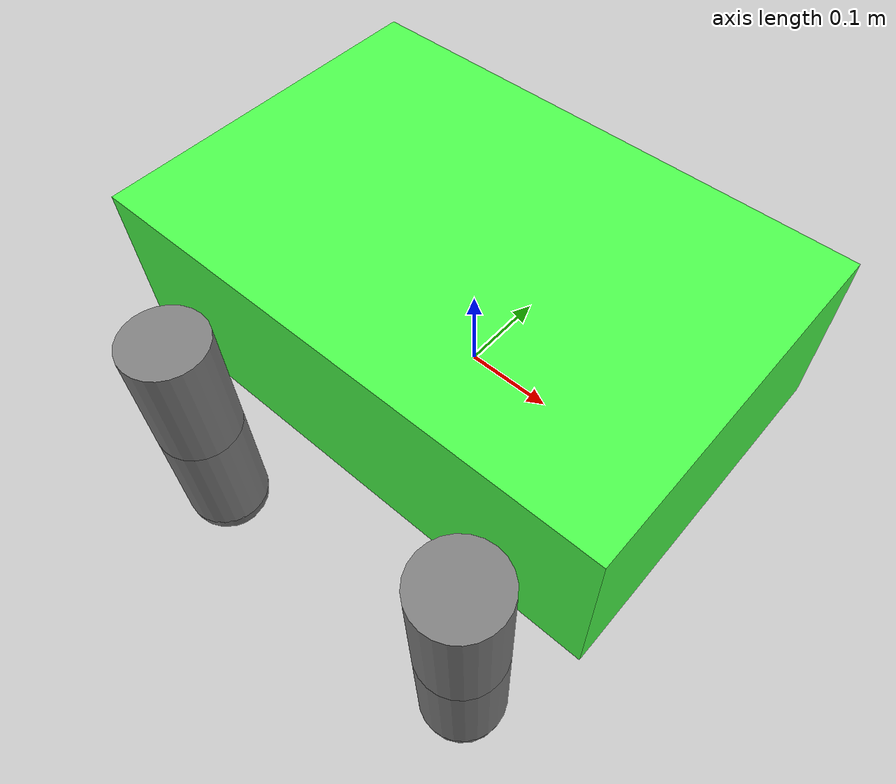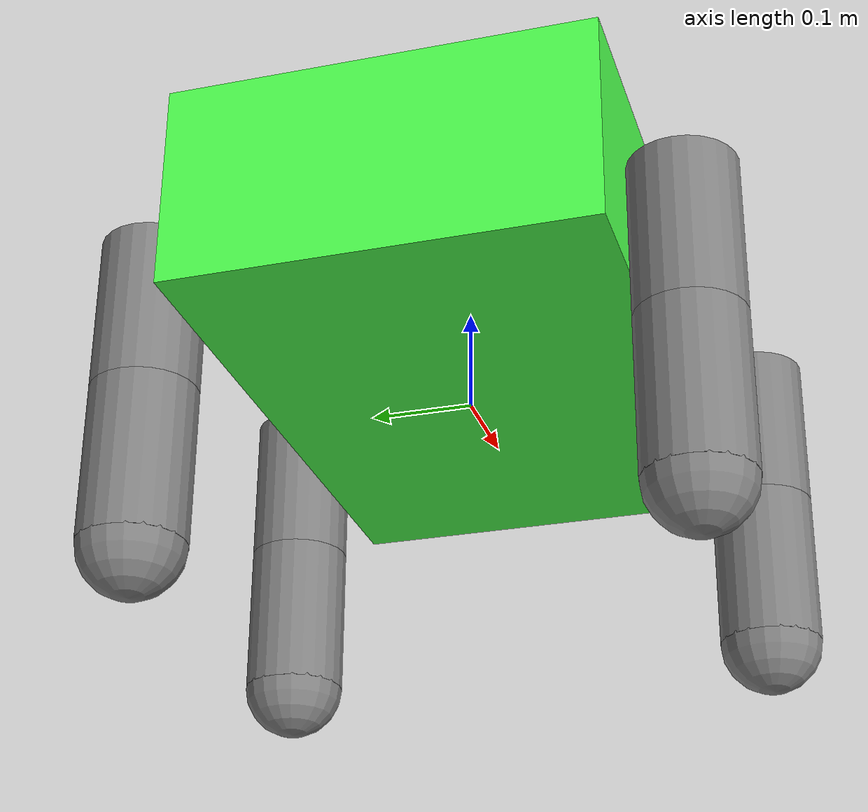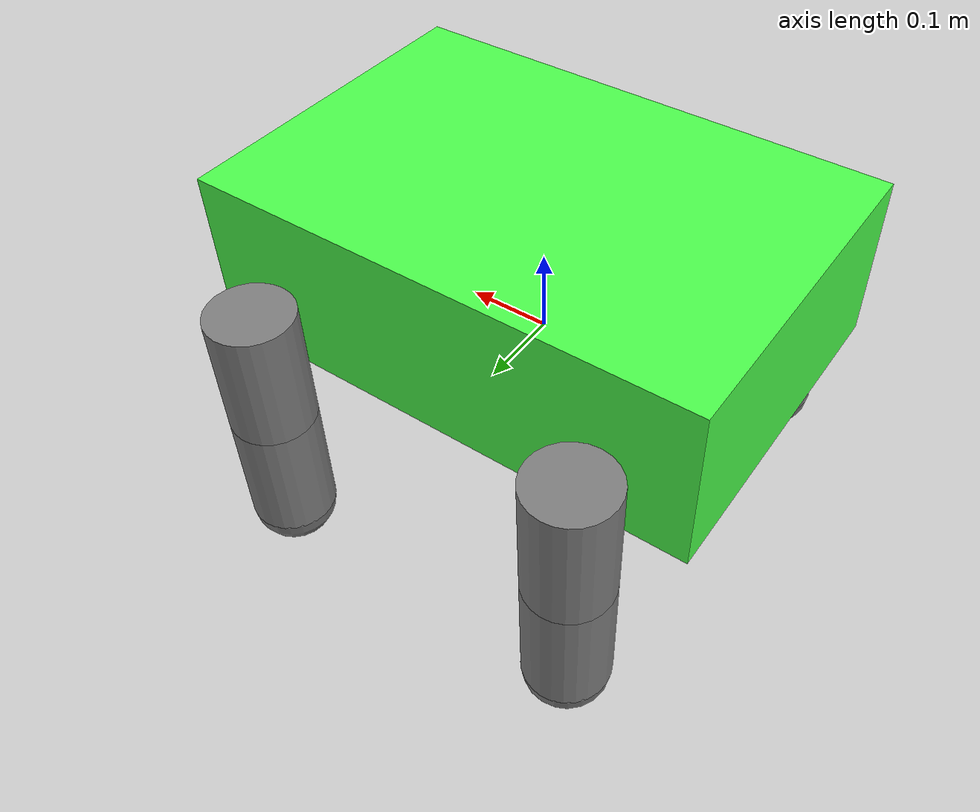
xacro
<?xml version="1.0"?>
<robot name="my_robot" xmlns:xacro="http://www.ros.org/wiki/xacro">

    <xacro:include filename="commom_properties.xacro" /> <!-- A inclusão do properties antes permite que seja usado em todos os arquivos abaixo -->

    <xacro:property name="body_length" value = "0.6"/>
    <xacro:property name="body_width" value ="0.4"/>
    <xacro:property name="body_height" value="0.2"/>
    <xacro:property name="leg_radius" value ="0.05"/>
    <xacro:property name="upper_leg_length" value ="0.15"/>
    <xacro:property name="lower_leg_length" value ="0.15"/>
    <xacro:property name="feet_radius" value ="0.05"/>

    <link name="body_link">
        <visual>
            <geometry>
                <box size="${body_length} ${body_width} ${body_height}"/>
            </geometry>
            <origin xyz="0 0 ${body_height/2.0}" rpy="0 0 0"/>
            <material name="green"/>
        </visual>
        <collision>
            <geometry>
                <box size="${body_length} ${body_width} ${body_height}"/>
            </geometry>
            <origin xyz="0 0 ${body_height/2.0}" rpy="0 0 0"/>
        </collision>
        <xacro:box_inertia m="5.0" l="${body_length}" w="${body_width}" h="${body_height}"
                            xyz="0 0 ${body_height/2.0}" rpy="0 0 0" />
    </link>

   <xacro:macro name="upper_leg_link" params = "prefix">
        <link name="${prefix}_upper_leg_link">
            <visual>
                <geometry>
                    <cylinder radius="${leg_radius}" length="${upper_leg_length}"/>
                </geometry>
                <origin xyz="0 0 ${-upper_leg_length/2.0}" rpy="0 0 0"/>
                <material name="grey"/>
            </visual>
            <collision>
                <geometry>
                    <cylinder radius="${leg_radius}" length="${upper_leg_length}"/>
                </geometry>
                <origin xyz="0 0 ${-upper_leg_length/2.0}" rpy="0 0 0"/>
            </collision>
            <xacro:cylinder_inertia m="1.0" r="${leg_radius}" h="${upper_leg_length}"
                                     xyz="0 0 0" rpy="${pi/2.0} 0 0"/>
        </link>
    </xacro:macro>

    <xacro:upper_leg_link prefix="RR"/>
    <xacro:upper_leg_link prefix="RL"/>
    <xacro:upper_leg_link prefix="FR"/>
    <xacro:upper_leg_link prefix="FL"/>

    <joint name="RR_upper_leg_joint" type="continuous">
        <parent link="body_link"/>
        <child link="RR_upper_leg_link"/>
        <origin xyz = "${-body_width/2.0} ${-(body_width/2.0+leg_radius)} ${body_height/2.0}" rpy = "0 0 0"/>
        <axis xyz = "0 1 0"/>
    </joint>

    <joint name="RL_upper_leg_joint" type="continuous">
        <parent link="body_link"/>
        <child link="RL_upper_leg_link"/>
        <origin xyz = "${-body_width/2.0} ${(body_width/2.0+leg_radius)} ${body_height/2.0}" rpy = "0 0 0"/>
        <axis xyz = "0 1 0"/>
    </joint>

    <joint name="FR_upper_leg_joint" type="continuous">
        <parent link="body_link"/>
        <child link="FR_upper_leg_link"/>
        <origin xyz = "${body_width/2.0} ${-(body_width/2.0+leg_radius)} ${body_height/2.0}" rpy = "0 0 0"/>
        <axis xyz = "0 1 0"/>
    </joint>

    <joint name="FL_upper_leg_joint" type="continuous">
        <parent link="body_link"/>
        <child link="FL_upper_leg_link"/>
        <origin xyz = "${body_width/2.0} ${(body_width/2.0+leg_radius)} ${body_height/2.0}" rpy = "0 0 0"/>
        <axis xyz = "0 1 0"/>
    </joint>

    <xacro:macro name="lower_leg_link" params = "prefix">
        <link name="${prefix}_lower_leg_link">
            <visual>
                <geometry>
                    <cylinder radius="${leg_radius}" length="${lower_leg_length}"/>
                </geometry>
                <origin xyz="0 0 ${-lower_leg_length/2.0}" rpy="0 0 0"/>
                <material name="grey"/>
            </visual>
            <collision>
                <geometry>
                    <cylinder radius="${leg_radius}" length="${lower_leg_length}"/>
                </geometry>
                <origin xyz="0 0 ${-lower_leg_length/2.0}" rpy="0 0 0"/>
            </collision>
            <xacro:cylinder_inertia m="1.0" r="${leg_radius}" h="${lower_leg_length}"
                                     xyz="0 0 0" rpy="${pi/2.0} 0 0"/>
        </link>
    </xacro:macro>

    <xacro:lower_leg_link prefix="RR"/>
    <xacro:lower_leg_link prefix="RL"/>
    <xacro:lower_leg_link prefix="FR"/>
    <xacro:lower_leg_link prefix="FL"/>

    <xacro:macro name="lower_leg_joint" params = "prefix">
        <joint name="${prefix}_lower_leg_joint" type="continuous">
            <parent link="${prefix}_upper_leg_link"/>
            <child link="${prefix}_lower_leg_link"/>
            <origin xyz = "0 0 ${-upper_leg_length}" rpy = "0 0 0"/>
            <axis xyz = "0 1 0"/>
        </joint>
    </xacro:macro>

    <xacro:lower_leg_joint prefix="RR"/>
    <xacro:lower_leg_joint prefix="RL"/>
    <xacro:lower_leg_joint prefix="FR"/>
    <xacro:lower_leg_joint prefix="FL"/>

    <xacro:macro name="foot_link" params = "prefix">
        <link name = "${prefix}_foot_link">
            <visual>
                <geometry>
                    <sphere radius = "${feet_radius}"/>
                    <origin xyz = "0 0 0" rpy = "0 0 0"/>
                </geometry>
                <material name="grey"/>
            </visual>
            <collision>
                <geometry>
                    <sphere radius = "${feet_radius}"/>
                    <origin xyz = "0 0 0" rpy = "0 0 0"/>
                </geometry>
            </collision>
            <xacro:sphere_inertia m="0.5" r="${feet_radius}"
                                xyz = "0 0 0" rpy = "0 0 0"/>
        </link>
    </xacro:macro>

    <xacro:foot_link prefix="RR"/>
    <xacro:foot_link prefix="RL"/>
    <xacro:foot_link prefix="FR"/>
    <xacro:foot_link prefix="FL"/>

    <xacro:macro name="foot_joint" params = "prefix">
        <joint name="${prefix}_foot_joint" type="fixed">
            <parent link = "${prefix}_lower_leg_link"/>
            <child link = "${prefix}_foot_link"/>
            <origin xyz = "0 0 ${-lower_leg_length}" rpy = "0 0 0"/>
        </joint>
    </xacro:macro>

    <xacro:foot_joint prefix="RR"/>
    <xacro:foot_joint prefix="RL"/>
    <xacro:foot_joint prefix="FR"/>
    <xacro:foot_joint prefix="FL"/>

</robot>

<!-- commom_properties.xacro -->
<robot xmlns:xacro="http://www.ros.org/wiki/xacro">

    <material name="green">
        <color rgba="0.3 1 0.3 1"/>
    </material>

    <material name="grey">
        <color rgba="0.5 0.5 0.5 1"/>
    </material>

    <xacro:macro name="box_inertia" params="m l w h xyz rpy">
        <inertial>
            <origin xyz="${xyz}" rpy="${rpy}"/>
            <mass value="${m}"/>
            <inertia ixx="${(m/12.0)*(h*h+l*l)}" ixy="0.0" ixz="0.0"
                    iyy="${(m/12.0)*(w*w+l*l)}" iyz="0.0"
                    izz="${(m/12.0)*(h*h+w*w)}"/>
        </inertial>
    </xacro:macro>

    <xacro:macro name="cylinder_inertia" params="m r h xyz rpy">
        <inertial>
            <origin xyz="${xyz}" rpy="${rpy}"/>
            <mass value="${m}"/>
            <inertia ixx="${(m/12.0)*(3*r*r+h*h)}" ixy="0.0" ixz="0.0"
                    iyy="${(m/12.0)*(3*r*r+h*h)}" iyz="0.0"
                    izz="${(m/2.0)*(r*r)}"/>
        </inertial>
    </xacro:macro>

    <xacro:macro name="sphere_inertia" params="m r xyz rpy">
        <inertial>
            <origin xyz="${xyz}" rpy="${rpy}"/>
            <mass value="${m}"/>
            <inertia ixx="${(2.0*m/5.0)*(r*r)}" ixy="0.0" ixz="0.0"
                    iyy="${(2.0*m/5.0)*(r*r)}" iyz="0.0"
                    izz="${(2.0*m/5.0)*(r*r)}"/>
        </inertial>
    </xacro:macro>

</robot>
